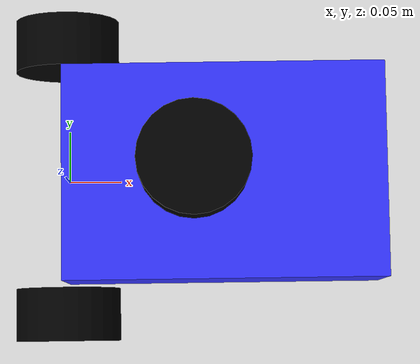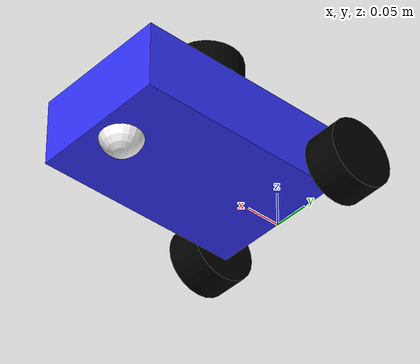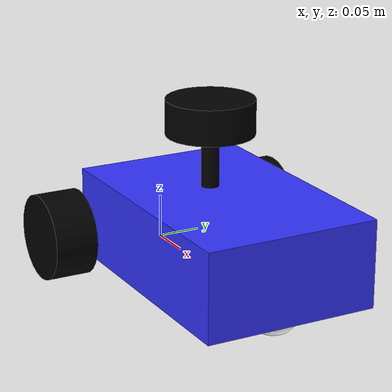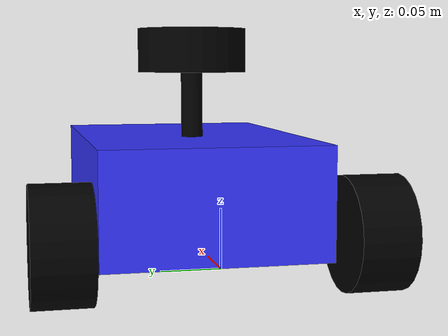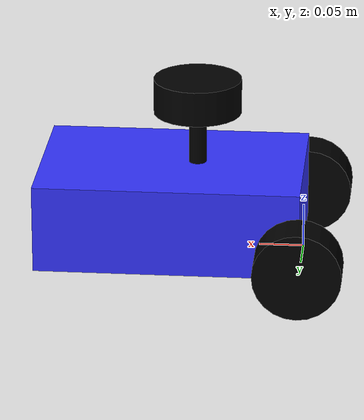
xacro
<?xml version="1.0"?>
<robot xmlns:xacro="http://www.ros.org/wiki/xacro"  name="my_robot">

    <xacro:include filename="robot.urdf.xacro" />

    <xacro:include filename="lidar.xacro" />
    <xacro:include filename="gazebo_control.xacro" />

</robot>

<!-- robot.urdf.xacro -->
<robot xmlns:xacro="http://www.ros.org/wiki/xacro" name="my_robot">

    <xacro:include filename="inertial.xacro" />

    <xacro:property name="chassis_length" value="0.3"/>
    <xacro:property name="chassis_width" value="0.2"/>
    <xacro:property name="chassis_height" value="0.1"/>
    <xacro:property name="chassis_mass" value="1.0"/>
    <xacro:property name="wheel_offset_x" value="0.226"/>
    <xacro:property name="wheel_offset_y" value="0.1485"/>
    <xacro:property name="wheel_offset_z" value="0.01"/>
    <xacro:property name="wheel_mass" value="0.5"/>
    <xacro:property name="caster_wheel_radius" value="0.03"/>
    <xacro:property name="caster_wheel_mass" value="0.05"/>
    <xacro:property name="caster_wheel_offset_x" value="0.26"/>
    <xacro:property name="caster_wheel_offset_z" value="0.006"/>

    <material name="white">
        <color rgba="1 1 1 1" />
    </material>

    <material name="orange">
        <color rgba="1 0.3 0.1 1"/>
    </material>

    <material name="blue">
        <color rgba="0.2 0.2 1 1"/>
    </material>

    <material name="black">
        <color rgba="0 0 0 1"/>
    </material>

    <material name="red">
        <color rgba="1 0 0 1"/>
    </material>

    <link name="chassis">
        <visual>
            <origin xyz="${chassis_length/2} 0 ${chassis_height/2}"/>
            <geometry>
                <box size="${chassis_length} ${chassis_width} ${chassis_height}"/>

            </geometry>
            <material name="blue"/>
        </visual>
        <collision>
            <origin xyz="${chassis_length/2} 0 ${chassis_height/2}"/>
            <geometry>
                <box size="${chassis_length} ${chassis_width} ${chassis_height}"/>
            </geometry>
        </collision>
        <xacro:inertial_box mass="${chassis_mass}" x="${chassis_length}" y="${chassis_width}" z="${chassis_height}">
            <origin xyz="${chassis_length/2} 0 ${chassis_height/2}" rpy="0 0 0"/>
        </xacro:inertial_box>
    </link>

    <link name="base_link"/>

    <joint name="base_link_to_chassis" type="fixed">
        <parent link="base_link"/>
        <child link="chassis"/>
        <origin xyz="0 0 0" rpy="0 0 0"/>
    </joint>

    <link name="wheel_left">
        <visual>
            <origin xyz="0 0 0" rpy="0 0 0"/>
            <geometry>
                <cylinder length="0.05" radius="0.05"/>
            </geometry>
            <material name="black"/>
        </visual>
        <collision>
            <origin xyz="0 0 0" rpy="0 0 0"/>
            <geometry>
                <cylinder length="0.05" radius="0.05"/>
            </geometry>
        </collision>
        <xacro:inertial_cylinder mass="${wheel_mass}" length="0.05" radius="0.05">
            <origin xyz="0 0 0" rpy="0 0 0"/>
        </xacro:inertial_cylinder>
    </link>

    <joint name="chassis_to_wheel_left" type="continuous">
        <parent link="chassis"/>
        <child link="wheel_left"/>
        <origin xyz="0 ${chassis_width/2 + 0.03} ${0.05/2}" rpy="1.57 0 0"/>
        <axis xyz="0 0 1"/>
    </joint>

    <link name="wheel_right">
        <visual>
            <origin xyz="0 0 0" rpy="0 0 0"/>
            <geometry>
                <cylinder length="0.05" radius="0.05"/>
            </geometry>
            <material name="black"/>
        </visual>
        <collision>
            <origin xyz="0 0 0" rpy="0 0 0"/>
            <geometry>
                <cylinder length="0.05" radius="0.05"/>
            </geometry>
        </collision>
        <xacro:inertial_cylinder mass="${wheel_mass}" length="0.05" radius="0.05">
            <origin xyz="0 0 0" rpy="0 0 0"/>
        </xacro:inertial_cylinder>
    </link>

    <joint name="chassis_to_wheel_right" type="continuous">
        <parent link="chassis"/>
        <child link="wheel_right"/>
        <origin xyz="0 -${chassis_width/2 + 0.03} ${0.05/2}" rpy="1.57 0 0"/>
        <axis xyz="0 0 1"/>
    </joint>

    <!-- CASTER WHEEL LINK -->

    <joint name="caster_wheel_joint" type="fixed">
        <parent link="chassis"/>
        <child link="caster_wheel"/>
        <origin xyz="${caster_wheel_offset_x} 0 ${caster_wheel_offset_z}"/>
    </joint>

    <link name="caster_wheel">
        <visual>
            <geometry>
                <sphere radius="${caster_wheel_radius}"/>
            </geometry>
            <material name="white"/>
        </visual>
        <collision>
            <geometry>
                <sphere radius="${caster_wheel_radius}"/>
            </geometry>
        </collision>
        <xacro:inertial_sphere mass="${caster_wheel_mass}" radius="${caster_wheel_radius}">
            <origin xyz="0 0 0" rpy="0 0 0"/>
        </xacro:inertial_sphere>
    </link>

</robot>

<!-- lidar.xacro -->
<robot xmlns:xacro="http://www.ros.org/wiki/xacro" >

    <joint name="laser_joint" type="fixed">
        <parent link="chassis"/>
        <child link="laser_frame"/>
        <origin xyz="0.122 0 0.180" rpy="0 0 0"/>
    </joint>

    <link name="laser_frame">
        <visual>
            <geometry>
                <cylinder radius="0.05" length="0.04"/>
            </geometry>
            <material name="black"/>
        </visual>
        <visual>
            <origin xyz="0 0 -0.05"/>
            <geometry>
                <cylinder radius="0.01" length="0.1"/>
            </geometry>
            <material name="black"/>
        </visual>
        <collision>
            <geometry>
                <cylinder radius="0.05" length="0.04"/>
            </geometry>
        </collision>
        <xacro:inertial_cylinder mass="0.1" length="0.04" radius="0.05">
            <origin xyz="0 0 0" rpy="0 0 0"/>
        </xacro:inertial_cylinder>
    </link>

    <gazebo reference="laser_frame">
        <material>Gazebo/Black</material>

        <sensor name='laser' type='gpu_lidar'>
            <pose>0 0 0 0 0 0</pose>
            <topic>scan</topic>
            <gz_frame_id>laser_frame</gz_frame_id>
            <update_rate>10</update_rate>
            <lidar>
              <scan>
                <horizontal>
                  <samples>640</samples>
                  <resolution>1</resolution>
                  <min_angle>-1.57</min_angle>
                  <max_angle>1.57</max_angle>
                </horizontal>
                <vertical>
                  <samples>1</samples>
                  <resolution>1</resolution>
                  <min_angle>0.0</min_angle>
                  <max_angle>0.0</max_angle>
                </vertical>
              </scan>
              <range>
                <min>0.08</min>
                <max>15.0</max>
                <resolution>0.01</resolution>
              </range>
            </lidar>
            <visualize>true</visualize>
          </sensor>
    </gazebo>

</robot>
